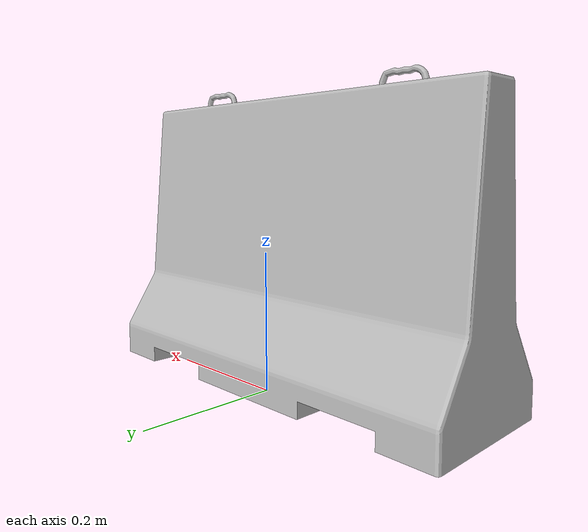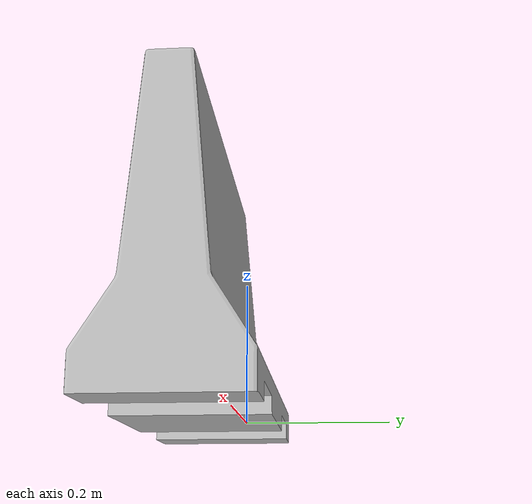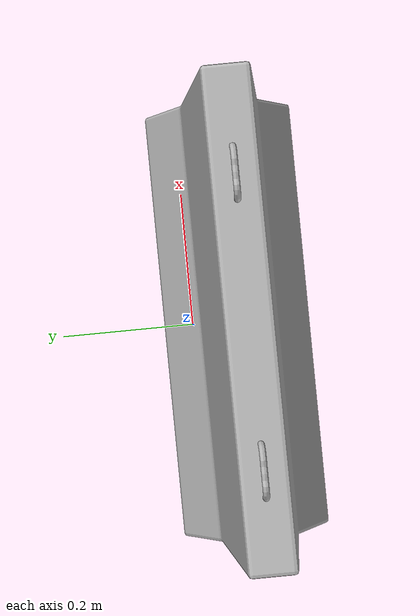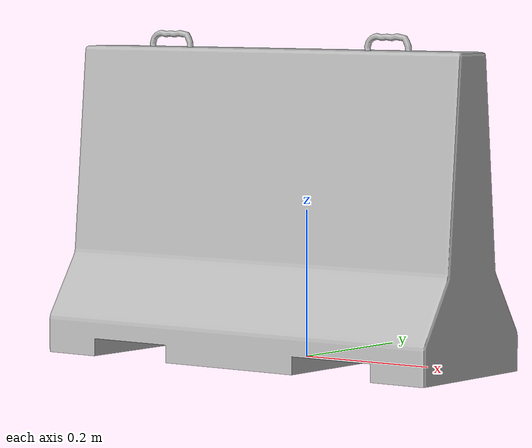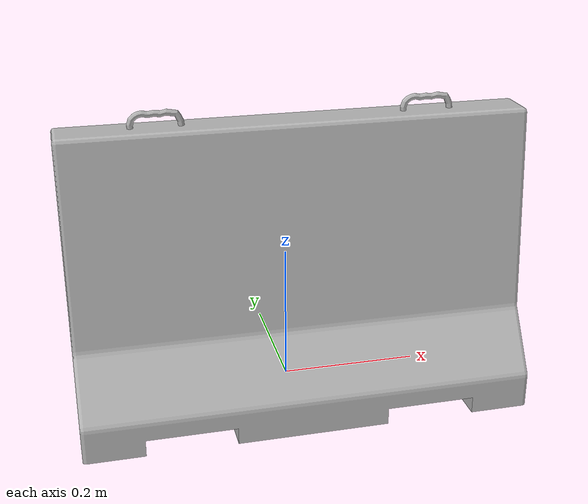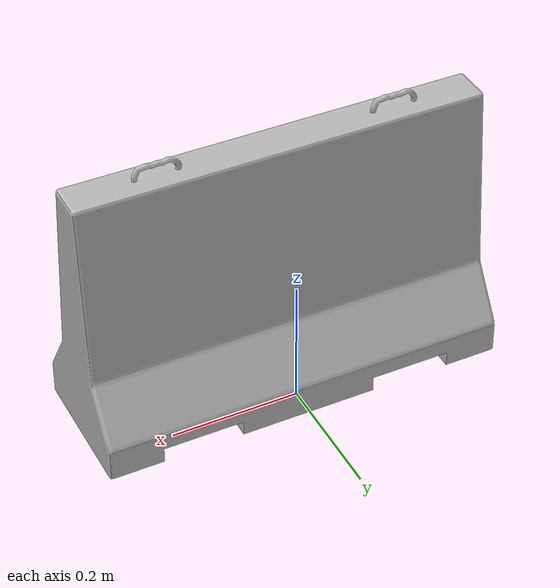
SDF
<?xml version="1.0" ?>
<sdf version='1.4'>
  <model name="fenceb">
      <static>1</static>
      <link name='link'>
        <visual name='visual'>
          <pose>0 0 0 0 0 1.570796327</pose>
          <geometry>
            <mesh>
              <uri>model://fenceb/meshes/fenceb.dae</uri>
              <scale>0.5 0.5 0.5</scale>
            </mesh>
          </geometry>
        </visual>
        <collision name='collision'>
          <laser_retro>0</laser_retro>
          <pose>0 -0.065 0.2 0 0 0</pose>
          <geometry>
            <box>
             <size>0.63 0.22 0.4</size>
            </box>
          </geometry>
       </collision>
      </link>
  </model>
</sdf>
